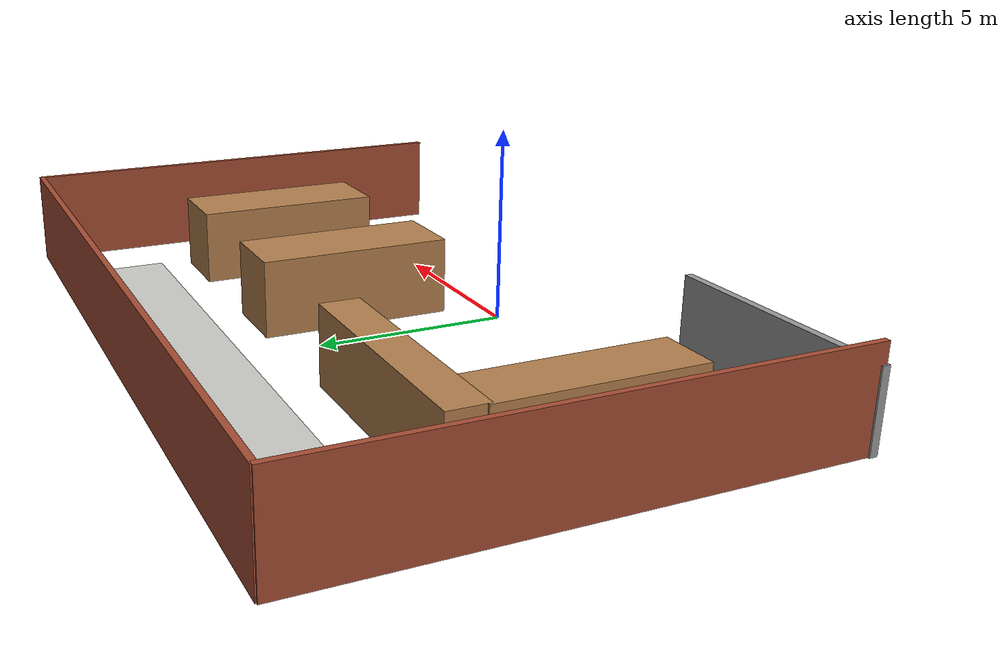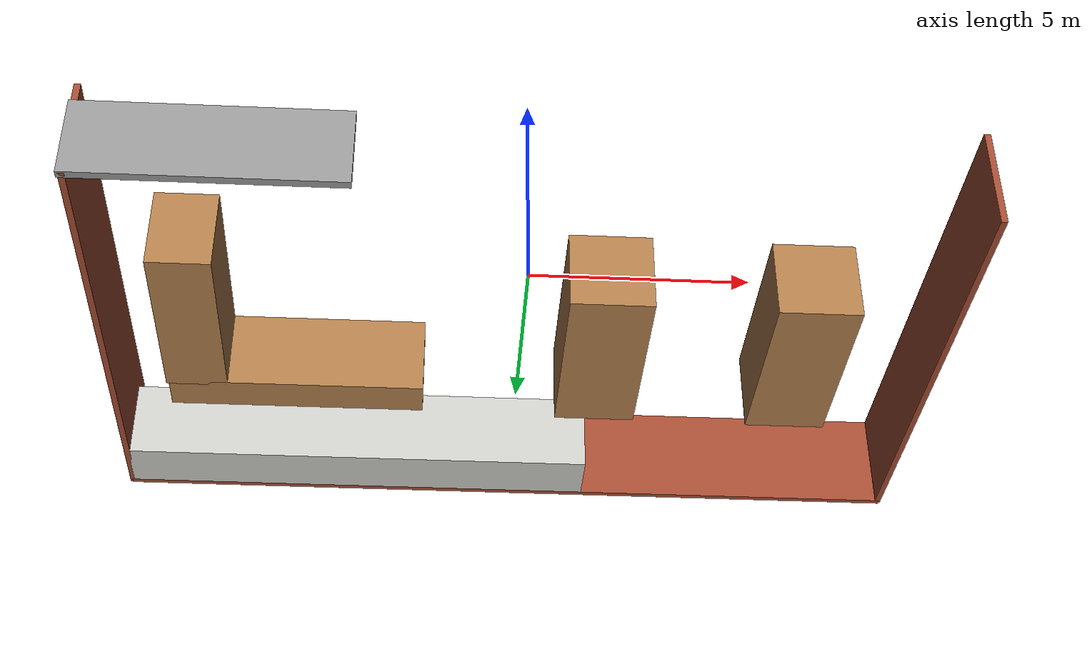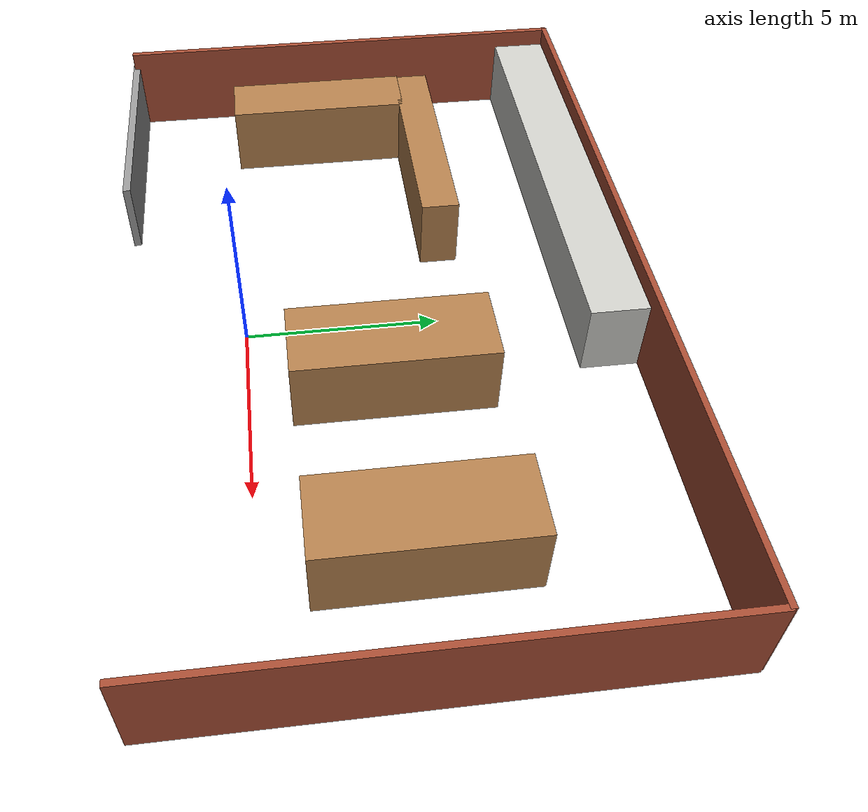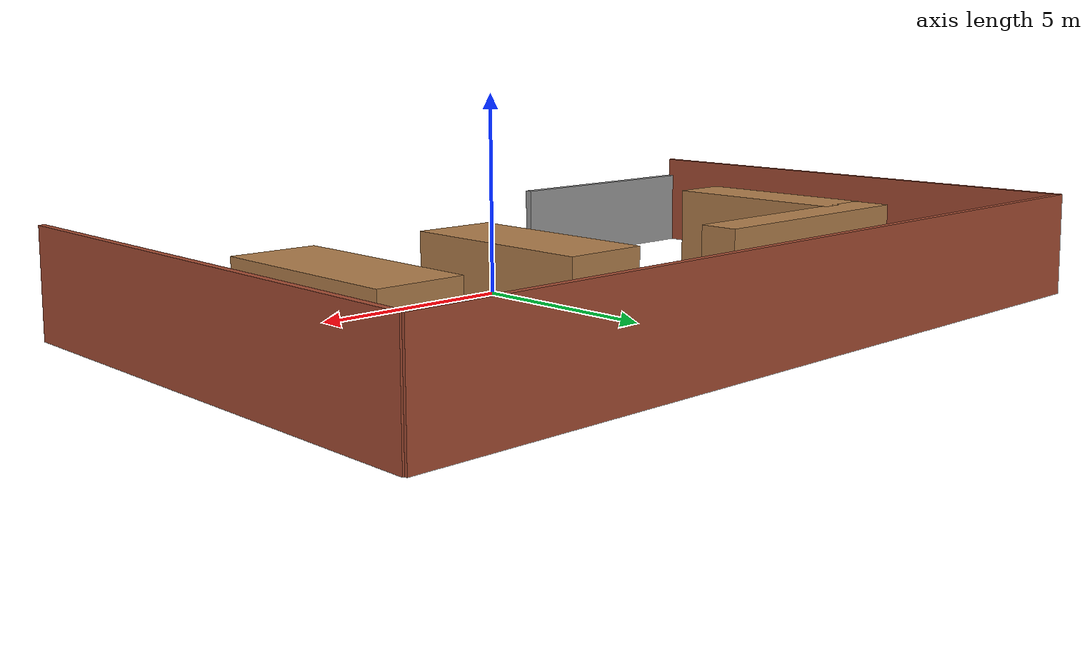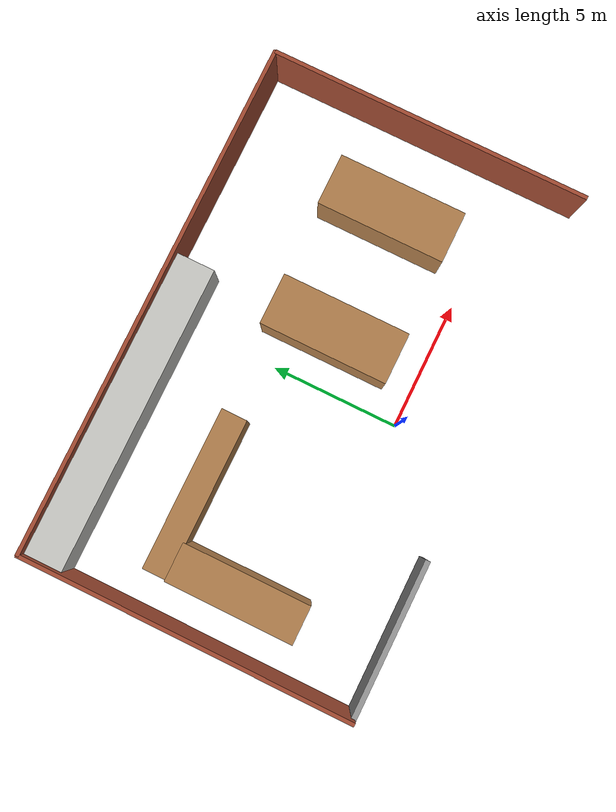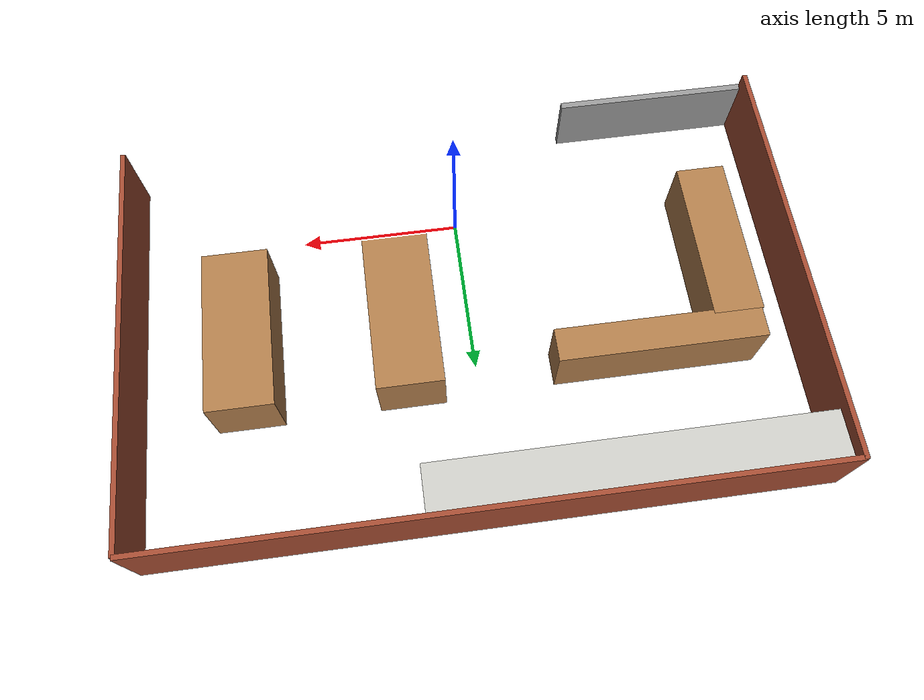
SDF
<?xml version='1.0'?>
<sdf version='1.7'>
  <model name='supermarket'>
    <pose>0.099 3.4875 0 0 -0 0</pose>
    <link name='charging station'>
      <collision name='Door_0_Collision'>
        <geometry>
          <box>
            <size>6.19169 0.2 2</size>
          </box>
        </geometry>
        <pose>0 0 1 0 -0 0</pose>
      </collision>
      <visual name='Door_0_Visual'>
        <pose>0 0 1 0 -0 0</pose>
        <geometry>
          <box>
            <size>6.19169 0.2 2</size>
          </box>
        </geometry>
        <material>
          <script>
            <uri>file://media/materials/scripts/gazebo.material</uri>
            <name>Gazebo/Grey</name>
          </script>
        </material>
      </visual>
      <pose>-7.11646 -6.46455 0 0 -0 0</pose>
    </link>
    <link name='Wall_15'>
      <collision name='Wall_15_Collision'>
        <geometry>
          <box>
            <size>20.25 0.15 2.5</size>
          </box>
        </geometry>
        <pose>0 0 1.25 0 -0 0</pose>
      </collision>
      <visual name='Wall_15_Visual'>
        <pose>0 0 1.25 0 -0 0</pose>
        <geometry>
          <box>
            <size>20.25 0.15 2.5</size>
          </box>
        </geometry>
        <material>
          <script>
            <uri>file://media/materials/scripts/gazebo.material</uri>
            <name>Gazebo/Bricks</name>
          </script>
          <ambient>1 1 1 1</ambient>
        </material>
        <meta>
          <layer>0</layer>
        </meta>
      </visual>
      <pose>0.002 6.4405 0 0 -0 3.14159</pose>
    </link>
    <link name='Wall_17'>
      <collision name='Wall_17_Collision'>
        <geometry>
          <box>
            <size>13 0.15 2.5</size>
          </box>
        </geometry>
        <pose>0 0 1.25 0 -0 0</pose>
      </collision>
      <visual name='Wall_17_Visual'>
        <pose>0 0 1.25 0 -0 0</pose>
        <geometry>
          <box>
            <size>13 0.15 2.5</size>
          </box>
        </geometry>
        <material>
          <script>
            <uri>file://media/materials/scripts/gazebo.material</uri>
            <name>Gazebo/Bricks</name>
          </script>
          <ambient>1 1 1 1</ambient>
        </material>
        <meta>
          <layer>0</layer>
        </meta>
      </visual>
      <pose>-10.094 -0.0155 0 0 -0 -1.5708</pose>
    </link>
    <link name='Wall_19'>
      <collision name='Wall_19_Collision'>
        <geometry>
          <box>
            <size>12 1.5 2</size>
          </box>
        </geometry>
        <pose>0 0 1 0 -0 0</pose>
      </collision>
      <visual name='Wall_19_Visual'>
        <pose>0 0 1 0 -0 0</pose>
        <geometry>
          <box>
            <size>12 1.5 2</size>
          </box>
        </geometry>
        <material>
          <script>
            <uri>file://media/materials/scripts/gazebo.material</uri>
            <name>Gazebo/CeilingTiled</name>
          </script>
          <ambient>1 1 1 1</ambient>
        </material>
        <meta>
          <layer>0</layer>
        </meta>
      </visual>
      <pose>-4.067 5.6345 0 0 -0 3.14159</pose>
    </link>
    <link name='Wall_21'>
      <collision name='Wall_21_Collision'>
        <geometry>
          <box>
            <size>5 2 2</size>
          </box>
        </geometry>
        <pose>0 0 1 0 -0 0</pose>
      </collision>
      <visual name='Wall_21_Visual'>
        <pose>0 0 1 0 -0 0</pose>
        <geometry>
          <box>
            <size>5 2 2</size>
          </box>
        </geometry>
        <material>
          <script>
            <uri>file://media/materials/scripts/gazebo.material</uri>
            <name>Gazebo/Wood</name>
          </script>
          <ambient>1 1 1 1</ambient>
        </material>
        <meta>
          <layer>0</layer>
        </meta>
      </visual>
      <pose>1.938 0.0615 0 0 -0 1.5708</pose>
    </link>
    <link name='Wall_23'>
      <collision name='Wall_23_Collision'>
        <geometry>
          <box>
            <size>5 2 2</size>
          </box>
        </geometry>
        <pose>0 0 1 0 -0 0</pose>
      </collision>
      <visual name='Wall_23_Visual'>
        <pose>0 0 1 0 -0 0</pose>
        <geometry>
          <box>
            <size>5 2 2</size>
          </box>
        </geometry>
        <material>
          <script>
            <uri>file://media/materials/scripts/gazebo.material</uri>
            <name>Gazebo/Wood</name>
          </script>
          <ambient>1 1 1 1</ambient>
        </material>
        <meta>
          <layer>0</layer>
        </meta>
      </visual>
      <pose>6.823 0.129501 0 0 -0 1.5708</pose>
    </link>
    <link name='Wall_25'>
      <collision name='Wall_25_Collision'>
        <geometry>
          <box>
            <size>5 1.5 2</size>
          </box>
        </geometry>
        <pose>0 0 1 0 -0 0</pose>
      </collision>
      <visual name='Wall_25_Visual'>
        <pose>0 0 1 0 -0 0</pose>
        <geometry>
          <box>
            <size>5 1.5 2</size>
          </box>
        </geometry>
        <material>
          <script>
            <uri>file://media/materials/scripts/gazebo.material</uri>
            <name>Gazebo/Wood</name>
          </script>
          <ambient>1 1 1 1</ambient>
        </material>
        <meta>
          <layer>0</layer>
        </meta>
      </visual>
      <pose>-7.966 -0.972499 0 0 -0 -1.5708</pose>
    </link>
    <link name='Wall_27'>
      <collision name='Wall_27_Collision'>
        <geometry>
          <box>
            <size>6.25 1 2</size>
          </box>
        </geometry>
        <pose>0 0 1 0 -0 0</pose>
      </collision>
      <visual name='Wall_27_Visual'>
        <pose>0 0 1 0 -0 0</pose>
        <geometry>
          <box>
            <size>6.25 1 2</size>
          </box>
        </geometry>
        <material>
          <script>
            <uri>file://media/materials/scripts/gazebo.material</uri>
            <name>Gazebo/Wood</name>
          </script>
          <ambient>1 1 1 1</ambient>
        </material>
        <meta>
          <layer>0</layer>
        </meta>
      </visual>
      <pose>-5.531 1.9155 0 0 -0 0</pose>
    </link>
    <link name='Wall_7'>
      <collision name='Wall_7_Collision'>
        <geometry>
          <box>
            <size>12.5 0.15 2.5</size>
          </box>
        </geometry>
        <pose>0 0 1.25 0 -0 0</pose>
      </collision>
      <visual name='Wall_7_Visual'>
        <pose>0 0 1.25 0 -0 0</pose>
        <geometry>
          <box>
            <size>12.5 0.15 2.5</size>
          </box>
        </geometry>
        <material>
          <script>
            <uri>file://media/materials/scripts/gazebo.material</uri>
            <name>Gazebo/Bricks</name>
          </script>
          <ambient>1 1 1 1</ambient>
        </material>
        <meta>
          <layer>0</layer>
        </meta>
      </visual>
      <pose>10.094 0.2005 0 0 -0 -1.5708</pose>
    </link>
    <static>1</static>
  </model>
</sdf>
